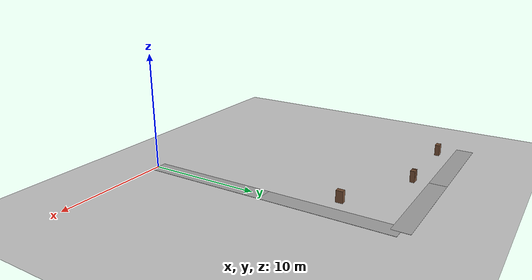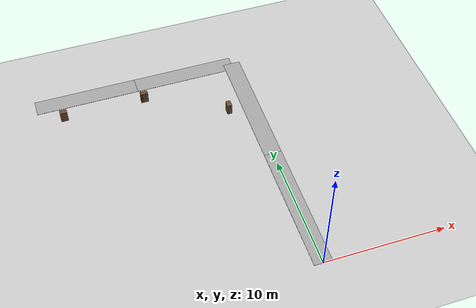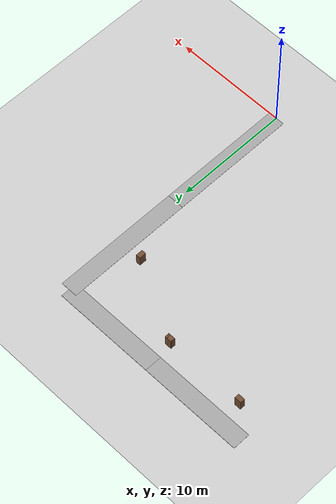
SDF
<?xml version="1.0"?>
<!-- Auto-generated by simulation/scripts/generate_campus_world.py - do not edit by hand. -->
<!-- source_csv=simulation/scripts/fixtures/synthetic_campus.csv corridor_width_m=3.0 sidewalk_strip_w_m=1.5 seed=0 -->
<sdf version="1.6">
  <world name="synthetic_campus">
    <!-- corridor_width_m=3.0 sidewalk_strip_w_m=1.5 seed=0 source_csv=simulation/scripts/fixtures/synthetic_campus.csv -->
    <physics type="ode">
      <max_step_size>0.001</max_step_size>
      <real_time_factor>1.0</real_time_factor>
      <real_time_update_rate>1000</real_time_update_rate>
      <ode>
        <solver>
          <type>quick</type>
          <iters>50</iters>
        </solver>
      </ode>
    </physics>
    <include>
      <uri>model://sun</uri>
    </include>
    <include>
      <uri>model://ground_plane</uri>
    </include>
    <!-- Sidewalk ribbon strips (one per waypoint segment) -->
    <model name="sidewalk_ribbon_000">
      <static>true</static>
      <pose>0.000000 5.565975 0.010000 0 0 1.570796</pose>
      <link name="link">
        <collision name="col">
          <geometry>
            <box>
              <size>11.131949 1.500000 0.020000</size>
            </box>
          </geometry>
        </collision>
        <visual name="vis">
          <geometry>
            <box>
              <size>11.131949 1.500000 0.020000</size>
            </box>
          </geometry>
          <material>
            <ambient>0.55 0.55 0.55 1</ambient>
            <diffuse>0.65 0.65 0.65 1</diffuse>
          </material>
        </visual>
      </link>
    </model>
    <model name="sidewalk_ribbon_001">
      <static>true</static>
      <pose>0.000000 16.697924 0.010000 0 0 1.570796</pose>
      <link name="link">
        <collision name="col">
          <geometry>
            <box>
              <size>11.131949 1.500000 0.020000</size>
            </box>
          </geometry>
        </collision>
        <visual name="vis">
          <geometry>
            <box>
              <size>11.131949 1.500000 0.020000</size>
            </box>
          </geometry>
          <material>
            <ambient>0.55 0.55 0.55 1</ambient>
            <diffuse>0.65 0.65 0.65 1</diffuse>
          </material>
        </visual>
      </link>
    </model>
    <model name="sidewalk_ribbon_002">
      <static>true</static>
      <pose>-4.445185 22.263898 0.010000 0 0 3.141593</pose>
      <link name="link">
        <collision name="col">
          <geometry>
            <box>
              <size>8.890370 1.500000 0.020000</size>
            </box>
          </geometry>
        </collision>
        <visual name="vis">
          <geometry>
            <box>
              <size>8.890370 1.500000 0.020000</size>
            </box>
          </geometry>
          <material>
            <ambient>0.55 0.55 0.55 1</ambient>
            <diffuse>0.65 0.65 0.65 1</diffuse>
          </material>
        </visual>
      </link>
    </model>
    <model name="sidewalk_ribbon_003">
      <static>true</static>
      <pose>-13.335555 22.263898 0.010000 0 0 3.141593</pose>
      <link name="link">
        <collision name="col">
          <geometry>
            <box>
              <size>8.890370 1.500000 0.020000</size>
            </box>
          </geometry>
        </collision>
        <visual name="vis">
          <geometry>
            <box>
              <size>8.890370 1.500000 0.020000</size>
            </box>
          </geometry>
          <material>
            <ambient>0.55 0.55 0.55 1</ambient>
            <diffuse>0.65 0.65 0.65 1</diffuse>
          </material>
        </visual>
      </link>
    </model>
    <!-- Static obstacle templates (deterministic) -->
    <model name="obstacle_000">
      <static>true</static>
      <pose>-15.628865 20.263898 0.500000 0 0 3.141593</pose>
      <link name="link">
        <collision name="col">
          <geometry>
            <box>
              <size>0.600000 0.400000 1.000000</size>
            </box>
          </geometry>
        </collision>
        <visual name="vis">
          <geometry>
            <box>
              <size>0.600000 0.400000 1.000000</size>
            </box>
          </geometry>
          <material>
            <ambient>0.35 0.25 0.15 1</ambient>
            <diffuse>0.45 0.30 0.20 1</diffuse>
          </material>
        </visual>
      </link>
    </model>
    <model name="obstacle_001">
      <static>true</static>
      <pose>-8.583340 20.263898 0.500000 0 0 3.141593</pose>
      <link name="link">
        <collision name="col">
          <geometry>
            <box>
              <size>0.600000 0.400000 1.000000</size>
            </box>
          </geometry>
        </collision>
        <visual name="vis">
          <geometry>
            <box>
              <size>0.600000 0.400000 1.000000</size>
            </box>
          </geometry>
          <material>
            <ambient>0.35 0.25 0.15 1</ambient>
            <diffuse>0.45 0.30 0.20 1</diffuse>
          </material>
        </visual>
      </link>
    </model>
    <model name="obstacle_002">
      <static>true</static>
      <pose>-8.604100 20.263898 0.500000 0 0 3.141593</pose>
      <link name="link">
        <collision name="col">
          <geometry>
            <box>
              <size>0.600000 0.400000 1.000000</size>
            </box>
          </geometry>
        </collision>
        <visual name="vis">
          <geometry>
            <box>
              <size>0.600000 0.400000 1.000000</size>
            </box>
          </geometry>
          <material>
            <ambient>0.35 0.25 0.15 1</ambient>
            <diffuse>0.45 0.30 0.20 1</diffuse>
          </material>
        </visual>
      </link>
    </model>
    <model name="obstacle_003">
      <static>true</static>
      <pose>-2.000000 16.750097 0.500000 0 0 1.570796</pose>
      <link name="link">
        <collision name="col">
          <geometry>
            <box>
              <size>0.600000 0.400000 1.000000</size>
            </box>
          </geometry>
        </collision>
        <visual name="vis">
          <geometry>
            <box>
              <size>0.600000 0.400000 1.000000</size>
            </box>
          </geometry>
          <material>
            <ambient>0.35 0.25 0.15 1</ambient>
            <diffuse>0.45 0.30 0.20 1</diffuse>
          </material>
        </visual>
      </link>
    </model>
  </world>
</sdf>
